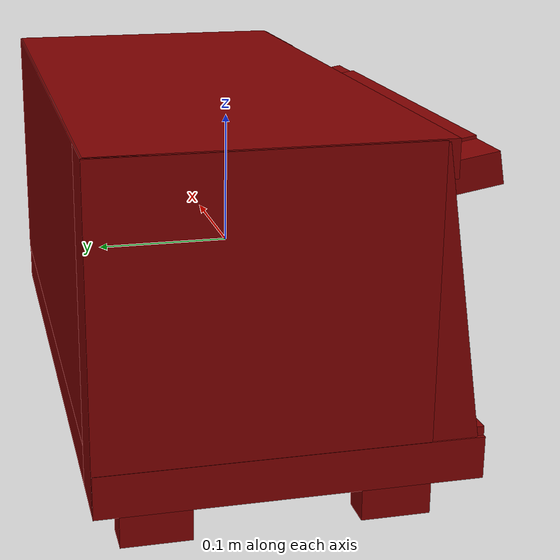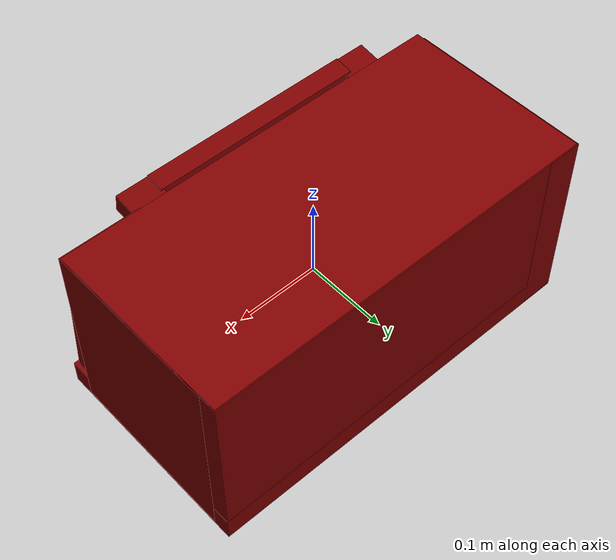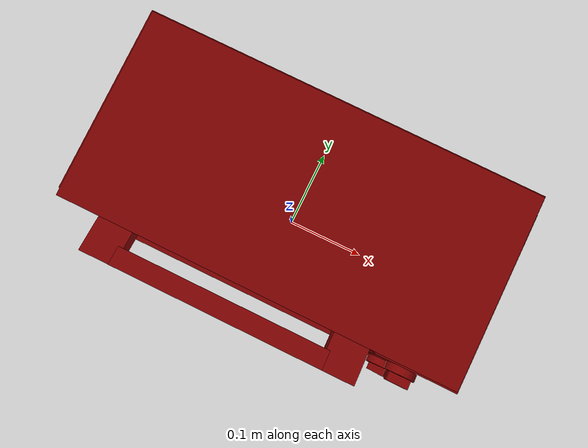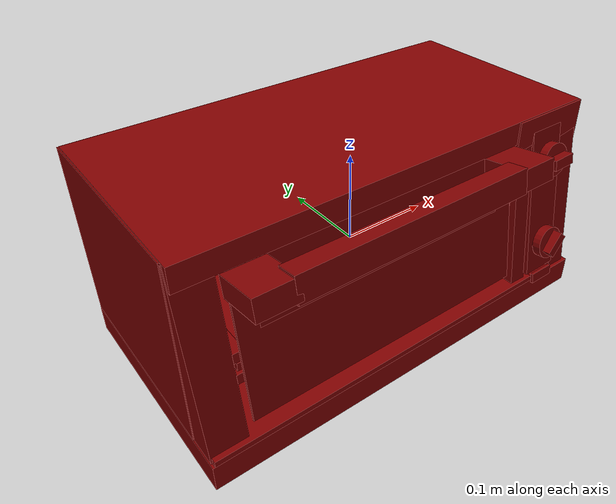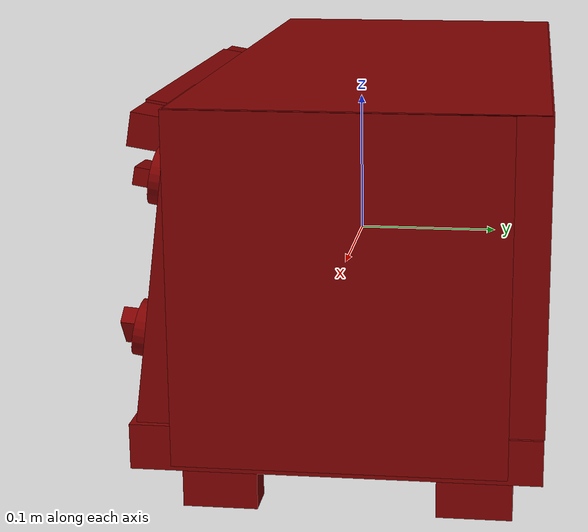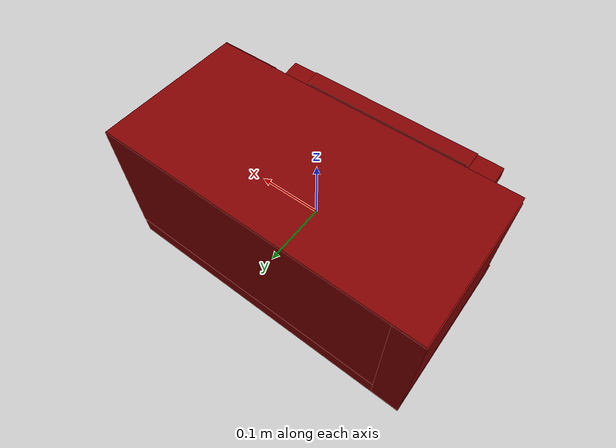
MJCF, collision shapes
<?xml version='1.0' encoding='UTF-8'?>
<mujoco model="model">
  <option timestep="0.002" gravity="0.0 0.0 -9.81"/>
  <compiler angle="radian"/>
  <asset>
    <mesh file="visuals/door.obj" name="door_vis"/>
    <mesh file="visuals/knob_temp.obj" name="knob_temp_vis"/>
    <mesh file="visuals/knob_time.obj" name="knob_time_vis"/>
    <mesh file="visuals/rack0.obj" name="rack0_vis"/>
    <mesh file="visuals/Body001.obj" name="Body001_vis"/>
    <mesh file="visuals/Button001.obj" name="Button001_vis"/>
    <mesh file="visuals/window.obj" name="window_vis"/>
    <texture file="visuals/T_BC001.png" name="Body001_material" type="2d"/>
    <material name="Body001_material" rgba="1 1 1 1.0" texture="Body001_material" shininess="0.1" specular="0.9"/>
    <texture file="visuals/T_BC001.png" name="door_material" type="2d"/>
    <material name="door_material" rgba="1 1 1 1.0" texture="door_material" shininess="0.1" specular="0.9"/>
    <texture file="visuals/T_BC001.png" name="window_material" type="2d"/>
    <material name="window_material" rgba="1 1 1 0.800000011920929" texture="window_material" shininess="0.1" specular="0.9"/>
    <texture file="visuals/T_BC001.png" name="knob_temp_material" type="2d"/>
    <material name="knob_temp_material" rgba="1 1 1 1.0" texture="knob_temp_material" shininess="0.1" specular="0.9"/>
    <texture file="visuals/T_BC001.png" name="knob_time_material" type="2d"/>
    <material name="knob_time_material" rgba="1 1 1 1.0" texture="knob_time_material" shininess="0.1" specular="0.9"/>
    <texture file="visuals/T_BC001.png" name="rack0_material" type="2d"/>
    <material name="rack0_material" rgba="1 1 1 1.0" texture="rack0_material" shininess="0.1" specular="0.9"/>
    <texture file="visuals/T_BC001.png" name="Button001_material" type="2d"/>
    <material name="Button001_material" rgba="1 1 1 1.0" texture="Button001_material" shininess="0.1" specular="0.9"/>
  </asset>
  <default>
    <default class="visual">
      <geom conaffinity="0" contype="0" group="1" type="mesh"/>
    </default>
    <default class="collision">
      <geom group="0" rgba="0.5 0 0 0.5"/>
    </default>
    <default class="spawn">
      <geom group="0" rgba="1 1 1 0.5" contype="0" conaffinity="0"/>
      <site group="0" rgba="1 1 1 0.5"/>
    </default>
    <default class="region">
      <geom group="1" conaffinity="0" contype="0" rgba="0 1 0 0"/>
    </default>
  </default>
  <worldbody>
    <body>
      <body name="object">
        <geom mesh="Body001_vis" type="mesh" solimp="0.998 0.998 0.001" solref="0.001 1" friction="0.95 0.3 0.1" class="visual" material="Body001_material"/>
        <geom class="collision" type="box" pos="0.00068613 0.10826825 0.02998612" size="0.23873665928840637 0.030213696882128716 0.09919781982898712" quat="1.0 0.0 0.0 0.0"/>
        <geom class="collision" type="box" pos="-0.03219675 -0.00508836 -0.08165930" size="0.20524783432483673 0.11399577558040619 0.01801336370408535" quat="1.0 0.0 0.0 0.0"/>
        <geom class="collision" type="box" pos="-0.00021489 0.00942991 -0.08476771" size="0.23979799449443817 0.12861356139183044 0.014741706661880016" quat="1.0 0.0 0.0 0.0"/>
        <geom class="collision" type="box" pos="-0.21858005 0.02783881 0.01607143" size="0.021069828420877457 0.11065155267715454 0.11285706609487534" quat="1.0 0.0 0.0 0.0"/>
        <geom class="collision" type="box" pos="0.19184743 0.01167574 0.01607143" size="0.04796069487929344 0.10498538613319397 0.11285706609487534" quat="1.0 0.0 0.0 0.0"/>
        <geom class="collision" type="box" pos="0.00038061 0.02294508 0.11691768" size="0.2384311407804489 0.11436856538057327 0.01267923042178154" quat="1.0 0.0 0.0 0.0"/>
        <geom class="collision" type="box" pos="0.21329883 0.09581936 -0.11480910" size="0.011492754332721233 0.023974789306521416 0.015316318720579147" quat="1.0 0.0 0.0 0.0"/>
        <geom class="collision" type="box" pos="-0.21316366 0.09581936 -0.11480910" size="0.011492754332721233 0.023974789306521416 0.015316318720579147" quat="1.0 0.0 0.0 0.0"/>
        <geom class="collision" type="box" pos="-0.21316366 -0.06554509 -0.11480910" size="0.011492754332721233 0.023974789306521416 0.015316318720579147" quat="1.0 0.0 0.0 0.0"/>
        <geom class="collision" type="box" pos="0.21329883 -0.06554509 -0.11480910" size="0.011492754332721233 0.023974789306521416 0.015316318720579147" quat="1.0 0.0 0.0 0.0"/>
        <geom class="collision" type="box" pos="-0.19124943 -0.01169773 0.01285045" size="0.0061254040338099 0.08170703798532486 0.005685448180884123" quat="1.0 0.0 0.0 0.0"/>
        <geom class="collision" type="box" pos="0.13786620 -0.01292793 -0.00911839" size="0.006125259678810835 0.08311435580253601 0.005685448180884123" quat="1.0 0.0 0.0 0.0"/>
        <geom class="collision" type="box" pos="-0.19124943 -0.01292793 -0.00982009" size="0.006125296000391245 0.08311478048563004 0.005685448180884123" quat="1.0 0.0 0.0 0.0"/>
        <geom class="collision" type="box" pos="0.13786620 -0.01169773 0.01452627" size="0.0061254040338099 0.08170703798532486 0.005685448180884123" quat="1.0 0.0 0.0 0.0"/>
        <geom class="collision" type="box" pos="0.22448613 -0.08924416 0.01481164" size="0.012030670419335365 0.014615795575082302 0.11281628906726837" quat="0.9977014064788818 -0.06640700250864029 0.006385390181094408 -0.011886697262525558"/>
        <geom class="collision" type="box" pos="0.15587489 -0.08982789 0.01583915" size="0.010035064071416855 0.014076977036893368 0.11281241476535797" quat="0.9977014064788818 -0.06640700250864029 0.006385390181094408 -0.011886697262525558"/>
        <geom class="collision" type="box" pos="-0.21941519 -0.08560347 0.01388740" size="0.019405046477913857 0.016000274568796158 0.11285706609487534" quat="0.9972575902938843 -0.07400870323181152 -0.0 0.0"/>
        <geom class="collision" type="box" pos="0.18876129 -0.08690056 0.03194521" size="0.021439656615257263 0.017295105382800102 0.095307856798172" quat="0.9975953102111816 -0.06930797547101974 -0.0 0.0"/>
        <body name="door">
          <joint axis="1.0 0.0 0.0" pos="-0.02681850 -0.10814450 -0.06375900" limited="true" name="door_joint" range="0.0 1.5707963267948966" type="hinge" damping="1" frictionloss="1" armature=".01" stiffness="0.3" springref="-1"/>
          <geom mesh="door_vis" type="mesh" solimp="0.998 0.998 0.001" solref="0.001 1" friction="0.95 0.3 0.1" class="visual" material="door_material"/>
          <geom class="collision" type="box" pos="0.12134288 -0.11404545 0.09456334" size="0.021890953183174133 0.025094499811530113 0.011600500904023647" quat="0.9967019557952881 -0.08114931732416153 -1.8018744944122294e-17 -4.9555610977259785e-24"/>
          <geom class="collision" type="box" pos="-0.02754864 -0.12758155 0.09678219" size="0.13131047785282135 0.011377752758562565 0.013575291261076927" quat="0.9967019557952881 -0.08114931732416153 -1.8018744944122294e-17 -4.9555610977259785e-24" name="door_handle_main"/>
          <geom class="collision" type="box" pos="-0.17486799 -0.11404545 0.09456334" size="0.02161538600921631 0.025094501674175262 0.011225162073969841" quat="0.9965037703514099 -0.0835433155298233 -0.0006798804388381541 0.0005293409340083599"/>
          <geom class="collision" type="box" pos="-0.02645988 -0.09813586 0.02446826" size="0.16569629311561584 0.001360922702588141 0.07812732458114624" quat="0.997551679611206 -0.06993357092142105 -2.0506859558928724e-17 -4.0534680523756936e-19" name="door_main"/>
          <body name="window">
            <geom mesh="window_vis" type="mesh" solimp="0.998 0.998 0.001" solref="0.001 1" friction="0.95 0.3 0.1" class="visual" material="window_material"/>
            <geom class="collision" type="box" pos="-0.02654939 -0.09891119 0.01235913" size="0.1435767263174057 0.001964004710316658 0.057988863438367844" quat="0.9979764223098755 -0.06358522176742554 -1.4118755446418504e-17 -1.202521814548543e-24"/>
          </body>
        </body>
        <body name="knob_temp">
          <joint axis="-0.013878945261240005 0.9901933073997498 -0.13901355862617493" pos="0.19111267 -0.10846503 0.07851640" limited="true" name="knob_temp_joint" range="0.0 5.340707511102648" type="hinge" damping="0.05" armature="1" frictionloss="0.75"/>
          <geom mesh="knob_temp_vis" type="mesh" solimp="0.998 0.998 0.001" solref="0.001 1" friction="0.95 0.3 0.1" class="visual" material="knob_temp_material"/>
          <geom class="collision" type="cylinder" pos="0.19105814 -0.10460173 0.07800276" size="0.01845064014196396 0.004720819648355246" quat="0.7660444378852844 0.6427876353263855 0.0 0.0" friction="100 0.5 0.01"/>
          <geom class="collision" type="box" pos="0.19147648 -0.11356715 0.07943778" size="0.013559652492403984 0.0061185890808701515 0.005755146499723196" quat="0.9962519407272339 -0.0846356749534607 -0.017792711034417152 -0.0015115675050765276" name="knob_temp_main" friction="100 0.5 0.01"/>
        </body>
        <body name="knob_time">
          <joint axis="-0.01567649282515049 0.9894545078277588 -0.14399300515651703" pos="0.19171947 -0.12210373 -0.02197181" limited="true" name="knob_time_joint" range="0.0 5.497787143782138" type="hinge" damping="0.05" armature="1" frictionloss="0.75"/>
          <geom mesh="knob_time_vis" type="mesh" solimp="0.998 0.998 0.001" solref="0.001 1" friction="0.95 0.3 0.1" class="visual" material="knob_time_material"/>
          <geom class="collision" type="cylinder" pos="0.19113886 -0.11827222 -0.02254293" size="0.018387097865343094 0.004912965465337038" quat="0.7660444378852844 0.6427876353263855 0.0 0.0" friction="100 0.5 0.01"/>
          <geom class="collision" type="box" pos="0.19180761 -0.12623065 -0.02100891" size="0.013559652492403984 0.0061185890808701515 0.005755146965384483" quat="0.9190560579299927 -0.03859755024313927 -0.39161303639411926 0.022033169865608215" name="knob_time_main" friction="100 0.5 0.01"/>
        </body>
        <body name="rack0">
          <geom class="region" name="reg_rack0" type="box" pos="-0.02600384500000001 -0.005861755000000003 0.05300741" size="0.15860269500000002 0.080164505 0.04680196"/>
          <joint axis="0.0 -1.0 0.0" pos="-0.02733350 -0.01021850 0.00217400" limited="true" name="rack0_joint" range="0.0 0.14" type="slide" damping="1" frictionloss="1" armature=".01" stiffness="0.05"/>
          <geom mesh="rack0_vis" type="mesh" solimp="0.998 0.998 0.001" solref="0.001 1" friction="0.95 0.3 0.1" class="visual" material="rack0_material"/>
          <geom class="collision" type="box" pos="-0.02679902 -0.01061527 0.00245701" size="0.16731858253479004 0.08346723020076752 0.0044018058106303215" quat="1.0 0.0 0.0 0.0"/>
        </body>
        <body name="Button001">
          <joint axis="0.0 1.0 0.0" pos="0.18959279 -0.11895024 -0.06806998" limited="true" name="Button001_joint" range="0.0 0.001" type="slide" damping="1" frictionloss="1" armature=".01" stiffness="4" springref="0"/>
          <geom mesh="Button001_vis" type="mesh" solimp="0.998 0.998 0.001" solref="0.001 1" friction="0.95 0.3 0.1" class="visual" material="Button001_material"/>
          <geom class="collision" type="box" pos="0.18999499 -0.11990434 -0.06767164" size="0.015358434058725834 0.001603512791916728 0.005804631393402815" quat="0.99686199426651 -0.07915915548801422 -1.7576863406535242e-17 -1.5752137258014866e-24"/>
        </body>
        <geom class="region" name="reg_int" type="box" pos="-0.026323080000000013 -0.004081874999999999 0.019893875" size="0.15823927 0.079642985 0.07958272499999999"/>
        <geom class="region" name="reg_main" type="box" pos="-5.0000000112460086e-09 0.00963249 0.0" size="0.241111005 0.13005699 0.13115099"/>
      </body>
    </body>
  </worldbody>
  <actuator>
    <motor name="door_joint_actuator" joint="door_joint" gear="50"/>
    <motor name="knob_temp_joint_actuator" joint="knob_temp_joint" gear="50"/>
    <motor name="knob_time_joint_actuator" joint="knob_time_joint" gear="50"/>
    <motor name="rack0_joint_actuator" joint="rack0_joint" gear="50"/>
    <motor name="Button001_joint_actuator" joint="Button001_joint" gear="0.5"/>
  </actuator>
</mujoco>
